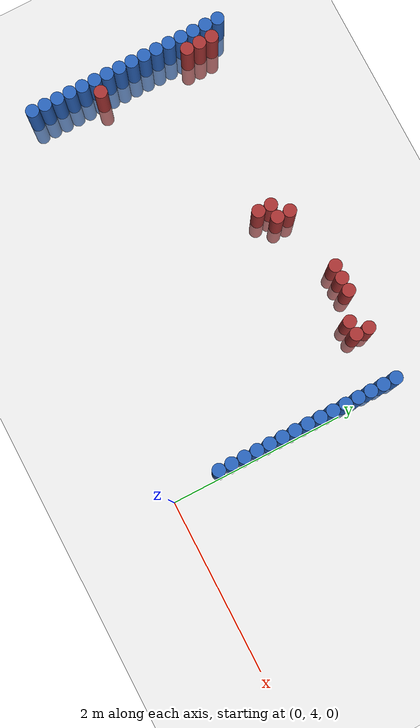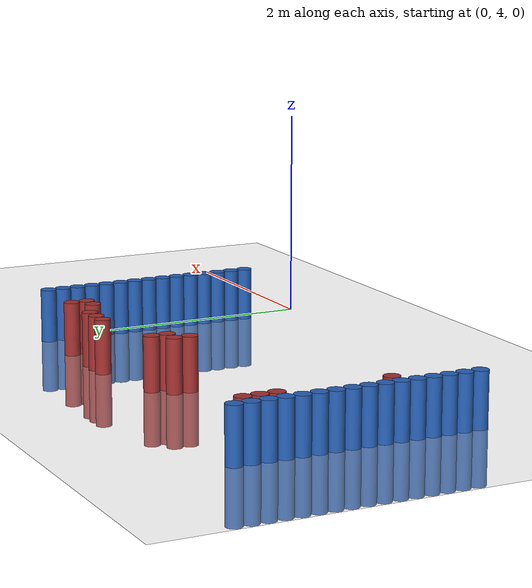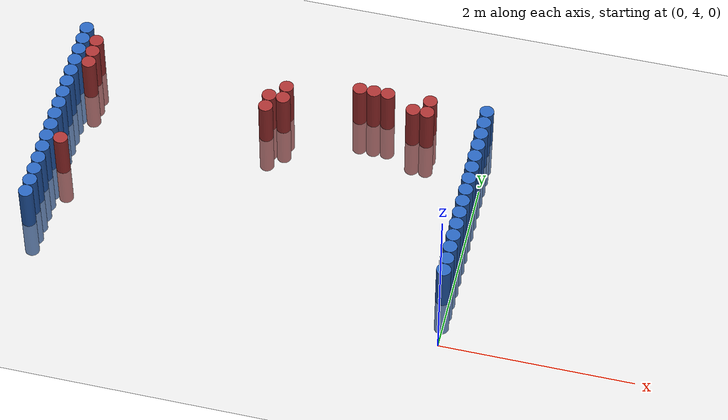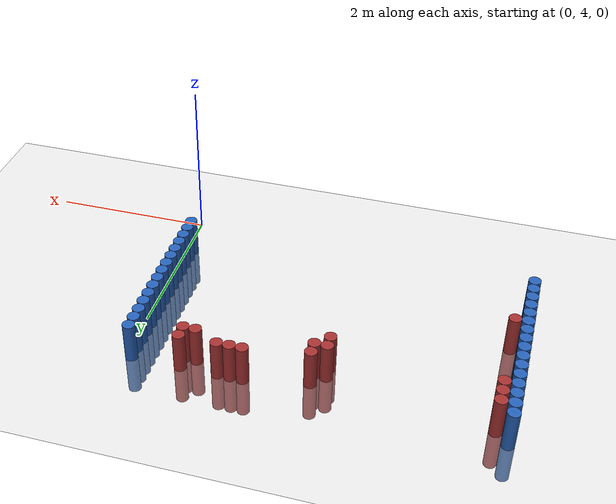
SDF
<sdf version="1.6">
 <world name="default">
  <model name="ground_plane">
   <static>1</static>
   <link name="link">
    <collision name="collision">
     <geometry><plane><normal>0 0 1</normal><size>100 100</size></plane></geometry>
     <surface><friction><ode><mu>100</mu><mu2>50</mu2></ode></friction></surface>
    </collision>
    <visual name="visual">
     <cast_shadows>0</cast_shadows>
     <geometry><plane><normal>0 0 1</normal><size>100 100</size></plane></geometry>
     <material>
      <script><uri>file://media/materials/scripts/gazebo.material</uri><name>Gazebo/Grey</name></script>
     </material>
    </visual>
   </link>
  </model>
  <model name="unit_cylinder_88">
   <static>1</static>
   <pose>-0.075000 4.575000 0.000000 0.000000 0.000000 0.000000</pose>
   <link name="link">
    <inertial>
     <mass>1</mass>
     <inertia><ixx>0.145833</ixx><ixy>0</ixy><ixz>0</ixz><iyy>0.145833</iyy><iyz>0</iyz><izz>0.125</izz></inertia>
    </inertial>
    <collision name="collision">
     <geometry><cylinder><radius>0.075000</radius><length>1</length></cylinder></geometry>
    </collision>
    <visual name="visual">
     <geometry><cylinder><radius>0.075000</radius><length>1</length></cylinder></geometry>
     <material>
      <ambient>0.152000 0.379000 0.720000 1</ambient>
      <diffuse>0.152000 0.379000 0.720000 1</diffuse>
     </material>
     <material>
      <script><name>Gazebo/Grey</name><uri>file://media/materials/scripts/gazebo.material</uri></script>
     </material>
    </visual>
   </link>
  </model>
  <model name="unit_cylinder_89">
   <static>1</static>
   <pose>-4.425000 4.575000 0.000000 0.000000 0.000000 0.000000</pose>
   <link name="link">
    <inertial>
     <mass>1</mass>
     <inertia><ixx>0.145833</ixx><ixy>0</ixy><ixz>0</ixz><iyy>0.145833</iyy><iyz>0</iyz><izz>0.125</izz></inertia>
    </inertial>
    <collision name="collision">
     <geometry><cylinder><radius>0.075000</radius><length>1</length></cylinder></geometry>
    </collision>
    <visual name="visual">
     <geometry><cylinder><radius>0.075000</radius><length>1</length></cylinder></geometry>
     <material>
      <ambient>0.152000 0.379000 0.720000 1</ambient>
      <diffuse>0.152000 0.379000 0.720000 1</diffuse>
     </material>
     <material>
      <script><name>Gazebo/Grey</name><uri>file://media/materials/scripts/gazebo.material</uri></script>
     </material>
    </visual>
   </link>
  </model>
  <model name="unit_cylinder_90">
   <static>1</static>
   <pose>-0.075000 4.725000 0.000000 0.000000 0.000000 0.000000</pose>
   <link name="link">
    <inertial>
     <mass>1</mass>
     <inertia><ixx>0.145833</ixx><ixy>0</ixy><ixz>0</ixz><iyy>0.145833</iyy><iyz>0</iyz><izz>0.125</izz></inertia>
    </inertial>
    <collision name="collision">
     <geometry><cylinder><radius>0.075000</radius><length>1</length></cylinder></geometry>
    </collision>
    <visual name="visual">
     <geometry><cylinder><radius>0.075000</radius><length>1</length></cylinder></geometry>
     <material>
      <ambient>0.152000 0.379000 0.720000 1</ambient>
      <diffuse>0.152000 0.379000 0.720000 1</diffuse>
     </material>
     <material>
      <script><name>Gazebo/Grey</name><uri>file://media/materials/scripts/gazebo.material</uri></script>
     </material>
    </visual>
   </link>
  </model>
  <model name="unit_cylinder_91">
   <static>1</static>
   <pose>-4.425000 4.725000 0.000000 0.000000 0.000000 0.000000</pose>
   <link name="link">
    <inertial>
     <mass>1</mass>
     <inertia><ixx>0.145833</ixx><ixy>0</ixy><ixz>0</ixz><iyy>0.145833</iyy><iyz>0</iyz><izz>0.125</izz></inertia>
    </inertial>
    <collision name="collision">
     <geometry><cylinder><radius>0.075000</radius><length>1</length></cylinder></geometry>
    </collision>
    <visual name="visual">
     <geometry><cylinder><radius>0.075000</radius><length>1</length></cylinder></geometry>
     <material>
      <ambient>0.152000 0.379000 0.720000 1</ambient>
      <diffuse>0.152000 0.379000 0.720000 1</diffuse>
     </material>
     <material>
      <script><name>Gazebo/Grey</name><uri>file://media/materials/scripts/gazebo.material</uri></script>
     </material>
    </visual>
   </link>
  </model>
  <model name="unit_cylinder_92">
   <static>1</static>
   <pose>-0.075000 4.875000 0.000000 0.000000 0.000000 0.000000</pose>
   <link name="link">
    <inertial>
     <mass>1</mass>
     <inertia><ixx>0.145833</ixx><ixy>0</ixy><ixz>0</ixz><iyy>0.145833</iyy><iyz>0</iyz><izz>0.125</izz></inertia>
    </inertial>
    <collision name="collision">
     <geometry><cylinder><radius>0.075000</radius><length>1</length></cylinder></geometry>
    </collision>
    <visual name="visual">
     <geometry><cylinder><radius>0.075000</radius><length>1</length></cylinder></geometry>
     <material>
      <ambient>0.152000 0.379000 0.720000 1</ambient>
      <diffuse>0.152000 0.379000 0.720000 1</diffuse>
     </material>
     <material>
      <script><name>Gazebo/Grey</name><uri>file://media/materials/scripts/gazebo.material</uri></script>
     </material>
    </visual>
   </link>
  </model>
  <model name="unit_cylinder_93">
   <static>1</static>
   <pose>-4.425000 4.875000 0.000000 0.000000 0.000000 0.000000</pose>
   <link name="link">
    <inertial>
     <mass>1</mass>
     <inertia><ixx>0.145833</ixx><ixy>0</ixy><ixz>0</ixz><iyy>0.145833</iyy><iyz>0</iyz><izz>0.125</izz></inertia>
    </inertial>
    <collision name="collision">
     <geometry><cylinder><radius>0.075000</radius><length>1</length></cylinder></geometry>
    </collision>
    <visual name="visual">
     <geometry><cylinder><radius>0.075000</radius><length>1</length></cylinder></geometry>
     <material>
      <ambient>0.152000 0.379000 0.720000 1</ambient>
      <diffuse>0.152000 0.379000 0.720000 1</diffuse>
     </material>
     <material>
      <script><name>Gazebo/Grey</name><uri>file://media/materials/scripts/gazebo.material</uri></script>
     </material>
    </visual>
   </link>
  </model>
  <model name="unit_cylinder_94">
   <static>1</static>
   <pose>-0.075000 5.025000 0.000000 0.000000 0.000000 0.000000</pose>
   <link name="link">
    <inertial>
     <mass>1</mass>
     <inertia><ixx>0.145833</ixx><ixy>0</ixy><ixz>0</ixz><iyy>0.145833</iyy><iyz>0</iyz><izz>0.125</izz></inertia>
    </inertial>
    <collision name="collision">
     <geometry><cylinder><radius>0.075000</radius><length>1</length></cylinder></geometry>
    </collision>
    <visual name="visual">
     <geometry><cylinder><radius>0.075000</radius><length>1</length></cylinder></geometry>
     <material>
      <ambient>0.152000 0.379000 0.720000 1</ambient>
      <diffuse>0.152000 0.379000 0.720000 1</diffuse>
     </material>
     <material>
      <script><name>Gazebo/Grey</name><uri>file://media/materials/scripts/gazebo.material</uri></script>
     </material>
    </visual>
   </link>
  </model>
  <model name="unit_cylinder_95">
   <static>1</static>
   <pose>-4.425000 5.025000 0.000000 0.000000 0.000000 0.000000</pose>
   <link name="link">
    <inertial>
     <mass>1</mass>
     <inertia><ixx>0.145833</ixx><ixy>0</ixy><ixz>0</ixz><iyy>0.145833</iyy><iyz>0</iyz><izz>0.125</izz></inertia>
    </inertial>
    <collision name="collision">
     <geometry><cylinder><radius>0.075000</radius><length>1</length></cylinder></geometry>
    </collision>
    <visual name="visual">
     <geometry><cylinder><radius>0.075000</radius><length>1</length></cylinder></geometry>
     <material>
      <ambient>0.152000 0.379000 0.720000 1</ambient>
      <diffuse>0.152000 0.379000 0.720000 1</diffuse>
     </material>
     <material>
      <script><name>Gazebo/Grey</name><uri>file://media/materials/scripts/gazebo.material</uri></script>
     </material>
    </visual>
   </link>
  </model>
  <model name="unit_cylinder_96">
   <static>1</static>
   <pose>-4.425000 5.175000 0.000000 0.000000 0.000000 0.000000</pose>
   <link name="link">
    <inertial>
     <mass>1</mass>
     <inertia><ixx>0.145833</ixx><ixy>0</ixy><ixz>0</ixz><iyy>0.145833</iyy><iyz>0</iyz><izz>0.125</izz></inertia>
    </inertial>
    <collision name="collision">
     <geometry><cylinder><radius>0.075000</radius><length>1</length></cylinder></geometry>
    </collision>
    <visual name="visual">
     <geometry><cylinder><radius>0.075000</radius><length>1</length></cylinder></geometry>
     <material>
      <ambient>0.152000 0.379000 0.720000 1</ambient>
      <diffuse>0.152000 0.379000 0.720000 1</diffuse>
     </material>
     <material>
      <script><name>Gazebo/Grey</name><uri>file://media/materials/scripts/gazebo.material</uri></script>
     </material>
    </visual>
   </link>
  </model>
  <model name="unit_cylinder_97">
   <static>1</static>
   <pose>-4.425000 5.325000 0.000000 0.000000 0.000000 0.000000</pose>
   <link name="link">
    <inertial>
     <mass>1</mass>
     <inertia><ixx>0.145833</ixx><ixy>0</ixy><ixz>0</ixz><iyy>0.145833</iyy><iyz>0</iyz><izz>0.125</izz></inertia>
    </inertial>
    <collision name="collision">
     <geometry><cylinder><radius>0.075000</radius><length>1</length></cylinder></geometry>
    </collision>
    <visual name="visual">
     <geometry><cylinder><radius>0.075000</radius><length>1</length></cylinder></geometry>
     <material>
      <ambient>0.152000 0.379000 0.720000 1</ambient>
      <diffuse>0.152000 0.379000 0.720000 1</diffuse>
     </material>
     <material>
      <script><name>Gazebo/Grey</name><uri>file://media/materials/scripts/gazebo.material</uri></script>
     </material>
    </visual>
   </link>
  </model>
  <model name="unit_cylinder_98">
   <static>1</static>
   <pose>-4.425000 5.475000 0.000000 0.000000 0.000000 0.000000</pose>
   <link name="link">
    <inertial>
     <mass>1</mass>
     <inertia><ixx>0.145833</ixx><ixy>0</ixy><ixz>0</ixz><iyy>0.145833</iyy><iyz>0</iyz><izz>0.125</izz></inertia>
    </inertial>
    <collision name="collision">
     <geometry><cylinder><radius>0.075000</radius><length>1</length></cylinder></geometry>
    </collision>
    <visual name="visual">
     <geometry><cylinder><radius>0.075000</radius><length>1</length></cylinder></geometry>
     <material>
      <ambient>0.152000 0.379000 0.720000 1</ambient>
      <diffuse>0.152000 0.379000 0.720000 1</diffuse>
     </material>
     <material>
      <script><name>Gazebo/Grey</name><uri>file://media/materials/scripts/gazebo.material</uri></script>
     </material>
    </visual>
   </link>
  </model>
  <model name="unit_cylinder_99">
   <static>1</static>
   <pose>-4.425000 5.625000 0.000000 0.000000 0.000000 0.000000</pose>
   <link name="link">
    <inertial>
     <mass>1</mass>
     <inertia><ixx>0.145833</ixx><ixy>0</ixy><ixz>0</ixz><iyy>0.145833</iyy><iyz>0</iyz><izz>0.125</izz></inertia>
    </inertial>
    <collision name="collision">
     <geometry><cylinder><radius>0.075000</radius><length>1</length></cylinder></geometry>
    </collision>
    <visual name="visual">
     <geometry><cylinder><radius>0.075000</radius><length>1</length></cylinder></geometry>
     <material>
      <ambient>0.152000 0.379000 0.720000 1</ambient>
      <diffuse>0.152000 0.379000 0.720000 1</diffuse>
     </material>
     <material>
      <script><name>Gazebo/Grey</name><uri>file://media/materials/scripts/gazebo.material</uri></script>
     </material>
    </visual>
   </link>
  </model>
  <model name="unit_cylinder_100">
   <static>1</static>
   <pose>-4.425000 5.775000 0.000000 0.000000 0.000000 0.000000</pose>
   <link name="link">
    <inertial>
     <mass>1</mass>
     <inertia><ixx>0.145833</ixx><ixy>0</ixy><ixz>0</ixz><iyy>0.145833</iyy><iyz>0</iyz><izz>0.125</izz></inertia>
    </inertial>
    <collision name="collision">
     <geometry><cylinder><radius>0.075000</radius><length>1</length></cylinder></geometry>
    </collision>
    <visual name="visual">
     <geometry><cylinder><radius>0.075000</radius><length>1</length></cylinder></geometry>
     <material>
      <ambient>0.152000 0.379000 0.720000 1</ambient>
      <diffuse>0.152000 0.379000 0.720000 1</diffuse>
     </material>
     <material>
      <script><name>Gazebo/Grey</name><uri>file://media/materials/scripts/gazebo.material</uri></script>
     </material>
    </visual>
   </link>
  </model>
  <model name="unit_cylinder_101">
   <static>1</static>
   <pose>-4.425000 5.925000 0.000000 0.000000 0.000000 0.000000</pose>
   <link name="link">
    <inertial>
     <mass>1</mass>
     <inertia><ixx>0.145833</ixx><ixy>0</ixy><ixz>0</ixz><iyy>0.145833</iyy><iyz>0</iyz><izz>0.125</izz></inertia>
    </inertial>
    <collision name="collision">
     <geometry><cylinder><radius>0.075000</radius><length>1</length></cylinder></geometry>
    </collision>
    <visual name="visual">
     <geometry><cylinder><radius>0.075000</radius><length>1</length></cylinder></geometry>
     <material>
      <ambient>0.152000 0.379000 0.720000 1</ambient>
      <diffuse>0.152000 0.379000 0.720000 1</diffuse>
     </material>
     <material>
      <script><name>Gazebo/Grey</name><uri>file://media/materials/scripts/gazebo.material</uri></script>
     </material>
    </visual>
   </link>
  </model>
  <model name="unit_cylinder_102">
   <static>1</static>
   <pose>-4.425000 6.075000 0.000000 0.000000 0.000000 0.000000</pose>
   <link name="link">
    <inertial>
     <mass>1</mass>
     <inertia><ixx>0.145833</ixx><ixy>0</ixy><ixz>0</ixz><iyy>0.145833</iyy><iyz>0</iyz><izz>0.125</izz></inertia>
    </inertial>
    <collision name="collision">
     <geometry><cylinder><radius>0.075000</radius><length>1</length></cylinder></geometry>
    </collision>
    <visual name="visual">
     <geometry><cylinder><radius>0.075000</radius><length>1</length></cylinder></geometry>
     <material>
      <ambient>0.152000 0.379000 0.720000 1</ambient>
      <diffuse>0.152000 0.379000 0.720000 1</diffuse>
     </material>
     <material>
      <script><name>Gazebo/Grey</name><uri>file://media/materials/scripts/gazebo.material</uri></script>
     </material>
    </visual>
   </link>
  </model>
  <model name="unit_cylinder_103">
   <static>1</static>
   <pose>-4.425000 6.225000 0.000000 0.000000 0.000000 0.000000</pose>
   <link name="link">
    <inertial>
     <mass>1</mass>
     <inertia><ixx>0.145833</ixx><ixy>0</ixy><ixz>0</ixz><iyy>0.145833</iyy><iyz>0</iyz><izz>0.125</izz></inertia>
    </inertial>
    <collision name="collision">
     <geometry><cylinder><radius>0.075000</radius><length>1</length></cylinder></geometry>
    </collision>
    <visual name="visual">
     <geometry><cylinder><radius>0.075000</radius><length>1</length></cylinder></geometry>
     <material>
      <ambient>0.152000 0.379000 0.720000 1</ambient>
      <diffuse>0.152000 0.379000 0.720000 1</diffuse>
     </material>
     <material>
      <script><name>Gazebo/Grey</name><uri>file://media/materials/scripts/gazebo.material</uri></script>
     </material>
    </visual>
   </link>
  </model>
  <model name="unit_cylinder_104">
   <static>1</static>
   <pose>-4.425000 6.375000 0.000000 0.000000 0.000000 0.000000</pose>
   <link name="link">
    <inertial>
     <mass>1</mass>
     <inertia><ixx>0.145833</ixx><ixy>0</ixy><ixz>0</ixz><iyy>0.145833</iyy><iyz>0</iyz><izz>0.125</izz></inertia>
    </inertial>
    <collision name="collision">
     <geometry><cylinder><radius>0.075000</radius><length>1</length></cylinder></geometry>
    </collision>
    <visual name="visual">
     <geometry><cylinder><radius>0.075000</radius><length>1</length></cylinder></geometry>
     <material>
      <ambient>0.152000 0.379000 0.720000 1</ambient>
      <diffuse>0.152000 0.379000 0.720000 1</diffuse>
     </material>
     <material>
      <script><name>Gazebo/Grey</name><uri>file://media/materials/scripts/gazebo.material</uri></script>
     </material>
    </visual>
   </link>
  </model>
  <model name="unit_cylinder_105">
   <static>1</static>
   <pose>-4.425000 6.525000 0.000000 0.000000 0.000000 0.000000</pose>
   <link name="link">
    <inertial>
     <mass>1</mass>
     <inertia><ixx>0.145833</ixx><ixy>0</ixy><ixz>0</ixz><iyy>0.145833</iyy><iyz>0</iyz><izz>0.125</izz></inertia>
    </inertial>
    <collision name="collision">
     <geometry><cylinder><radius>0.075000</radius><length>1</length></cylinder></geometry>
    </collision>
    <visual name="visual">
     <geometry><cylinder><radius>0.075000</radius><length>1</length></cylinder></geometry>
     <material>
      <ambient>0.152000 0.379000 0.720000 1</ambient>
      <diffuse>0.152000 0.379000 0.720000 1</diffuse>
     </material>
     <material>
      <script><name>Gazebo/Grey</name><uri>file://media/materials/scripts/gazebo.material</uri></script>
     </material>
    </visual>
   </link>
  </model>
  <model name="unit_cylinder_106">
   <static>1</static>
   <pose>-4.425000 6.675000 0.000000 0.000000 0.000000 0.000000</pose>
   <link name="link">
    <inertial>
     <mass>1</mass>
     <inertia><ixx>0.145833</ixx><ixy>0</ixy><ixz>0</ixz><iyy>0.145833</iyy><iyz>0</iyz><izz>0.125</izz></inertia>
    </inertial>
    <collision name="collision">
     <geometry><cylinder><radius>0.075000</radius><length>1</length></cylinder></geometry>
    </collision>
    <visual name="visual">
     <geometry><cylinder><radius>0.075000</radius><length>1</length></cylinder></geometry>
     <material>
      <ambient>0.152000 0.379000 0.720000 1</ambient>
      <diffuse>0.152000 0.379000 0.720000 1</diffuse>
     </material>
     <material>
      <script><name>Gazebo/Grey</name><uri>file://media/materials/scripts/gazebo.material</uri></script>
     </material>
    </visual>
   </link>
  </model>
  <model name="unit_cylinder_107">
   <static>1</static>
   <pose>-4.425000 6.825000 0.000000 0.000000 0.000000 0.000000</pose>
   <link name="link">
    <inertial>
     <mass>1</mass>
     <inertia><ixx>0.145833</ixx><ixy>0</ixy><ixz>0</ixz><iyy>0.145833</iyy><iyz>0</iyz><izz>0.125</izz></inertia>
    </inertial>
    <collision name="collision">
     <geometry><cylinder><radius>0.075000</radius><length>1</length></cylinder></geometry>
    </collision>
    <visual name="visual">
     <geometry><cylinder><radius>0.075000</radius><length>1</length></cylinder></geometry>
     <material>
      <ambient>0.152000 0.379000 0.720000 1</ambient>
      <diffuse>0.152000 0.379000 0.720000 1</diffuse>
     </material>
     <material>
      <script><name>Gazebo/Grey</name><uri>file://media/materials/scripts/gazebo.material</uri></script>
     </material>
    </visual>
   </link>
  </model>
  <model name="unit_cylinder_126">
   <static>1</static>
   <pose>-4.275000 5.325000 0.000000 0.000000 0.000000 0.000000</pose>
   <link name="link">
    <inertial>
     <mass>1</mass>
     <inertia><ixx>0.145833</ixx><ixy>0</ixy><ixz>0</ixz><iyy>0.145833</iyy><iyz>0</iyz><izz>0.125</izz></inertia>
    </inertial>
    <collision name="collision">
     <geometry><cylinder><radius>0.075000</radius><length>1</length></cylinder></geometry>
    </collision>
    <visual name="visual">
     <geometry><cylinder><radius>0.075000</radius><length>1</length></cylinder></geometry>
     <material>
      <ambient>0.648000 0.192000 0.192000 1</ambient>
      <diffuse>0.648000 0.192000 0.192000 1</diffuse>
     </material>
     <material>
      <script><name>Gazebo/Grey</name><uri>file://media/materials/scripts/gazebo.material</uri></script>
     </material>
    </visual>
   </link>
  </model>
  <model name="unit_cylinder_127">
   <static>1</static>
   <pose>-4.275000 6.375000 0.000000 0.000000 0.000000 0.000000</pose>
   <link name="link">
    <inertial>
     <mass>1</mass>
     <inertia><ixx>0.145833</ixx><ixy>0</ixy><ixz>0</ixz><iyy>0.145833</iyy><iyz>0</iyz><izz>0.125</izz></inertia>
    </inertial>
    <collision name="collision">
     <geometry><cylinder><radius>0.075000</radius><length>1</length></cylinder></geometry>
    </collision>
    <visual name="visual">
     <geometry><cylinder><radius>0.075000</radius><length>1</length></cylinder></geometry>
     <material>
      <ambient>0.648000 0.192000 0.192000 1</ambient>
      <diffuse>0.648000 0.192000 0.192000 1</diffuse>
     </material>
     <material>
      <script><name>Gazebo/Grey</name><uri>file://media/materials/scripts/gazebo.material</uri></script>
     </material>
    </visual>
   </link>
  </model>
  <model name="unit_cylinder_128">
   <static>1</static>
   <pose>-4.275000 6.525000 0.000000 0.000000 0.000000 0.000000</pose>
   <link name="link">
    <inertial>
     <mass>1</mass>
     <inertia><ixx>0.145833</ixx><ixy>0</ixy><ixz>0</ixz><iyy>0.145833</iyy><iyz>0</iyz><izz>0.125</izz></inertia>
    </inertial>
    <collision name="collision">
     <geometry><cylinder><radius>0.075000</radius><length>1</length></cylinder></geometry>
    </collision>
    <visual name="visual">
     <geometry><cylinder><radius>0.075000</radius><length>1</length></cylinder></geometry>
     <material>
      <ambient>0.648000 0.192000 0.192000 1</ambient>
      <diffuse>0.648000 0.192000 0.192000 1</diffuse>
     </material>
     <material>
      <script><name>Gazebo/Grey</name><uri>file://media/materials/scripts/gazebo.material</uri></script>
     </material>
    </visual>
   </link>
  </model>
  <model name="unit_cylinder_129">
   <static>1</static>
   <pose>-4.275000 6.675000 0.000000 0.000000 0.000000 0.000000</pose>
   <link name="link">
    <inertial>
     <mass>1</mass>
     <inertia><ixx>0.145833</ixx><ixy>0</ixy><ixz>0</ixz><iyy>0.145833</iyy><iyz>0</iyz><izz>0.125</izz></inertia>
    </inertial>
    <collision name="collision">
     <geometry><cylinder><radius>0.075000</radius><length>1</length></cylinder></geometry>
    </collision>
    <visual name="visual">
     <geometry><cylinder><radius>0.075000</radius><length>1</length></cylinder></geometry>
     <material>
      <ambient>0.648000 0.192000 0.192000 1</ambient>
      <diffuse>0.648000 0.192000 0.192000 1</diffuse>
     </material>
     <material>
      <script><name>Gazebo/Grey</name><uri>file://media/materials/scripts/gazebo.material</uri></script>
     </material>
    </visual>
   </link>
  </model>
  <model name="unit_cylinder_152">
   <static>1</static>
   <pose>-2.325000 6.225000 0.000000 0.000000 0.000000 0.000000</pose>
   <link name="link">
    <inertial>
     <mass>1</mass>
     <inertia><ixx>0.145833</ixx><ixy>0</ixy><ixz>0</ixz><iyy>0.145833</iyy><iyz>0</iyz><izz>0.125</izz></inertia>
    </inertial>
    <collision name="collision">
     <geometry><cylinder><radius>0.075000</radius><length>1</length></cylinder></geometry>
    </collision>
    <visual name="visual">
     <geometry><cylinder><radius>0.075000</radius><length>1</length></cylinder></geometry>
     <material>
      <ambient>0.648000 0.192000 0.192000 1</ambient>
      <diffuse>0.648000 0.192000 0.192000 1</diffuse>
     </material>
     <material>
      <script><name>Gazebo/Grey</name><uri>file://media/materials/scripts/gazebo.material</uri></script>
     </material>
    </visual>
   </link>
  </model>
  <model name="unit_cylinder_153">
   <static>1</static>
   <pose>-2.325000 6.375000 0.000000 0.000000 0.000000 0.000000</pose>
   <link name="link">
    <inertial>
     <mass>1</mass>
     <inertia><ixx>0.145833</ixx><ixy>0</ixy><ixz>0</ixz><iyy>0.145833</iyy><iyz>0</iyz><izz>0.125</izz></inertia>
    </inertial>
    <collision name="collision">
     <geometry><cylinder><radius>0.075000</radius><length>1</length></cylinder></geometry>
    </collision>
    <visual name="visual">
     <geometry><cylinder><radius>0.075000</radius><length>1</length></cylinder></geometry>
     <material>
      <ambient>0.648000 0.192000 0.192000 1</ambient>
      <diffuse>0.648000 0.192000 0.192000 1</diffuse>
     </material>
     <material>
      <script><name>Gazebo/Grey</name><uri>file://media/materials/scripts/gazebo.material</uri></script>
     </material>
    </visual>
   </link>
  </model>
  <model name="unit_cylinder_158">
   <static>1</static>
   <pose>-2.175000 6.375000 0.000000 0.000000 0.000000 0.000000</pose>
   <link name="link">
    <inertial>
     <mass>1</mass>
     <inertia><ixx>0.145833</ixx><ixy>0</ixy><ixz>0</ixz><iyy>0.145833</iyy><iyz>0</iyz><izz>0.125</izz></inertia>
    </inertial>
    <collision name="collision">
     <geometry><cylinder><radius>0.075000</radius><length>1</length></cylinder></geometry>
    </collision>
    <visual name="visual">
     <geometry><cylinder><radius>0.075000</radius><length>1</length></cylinder></geometry>
     <material>
      <ambient>0.648000 0.192000 0.192000 1</ambient>
      <diffuse>0.648000 0.192000 0.192000 1</diffuse>
     </material>
     <material>
      <script><name>Gazebo/Grey</name><uri>file://media/materials/scripts/gazebo.material</uri></script>
     </material>
    </visual>
   </link>
  </model>
  <model name="unit_cylinder_159">
   <static>1</static>
   <pose>-2.175000 6.525000 0.000000 0.000000 0.000000 0.000000</pose>
   <link name="link">
    <inertial>
     <mass>1</mass>
     <inertia><ixx>0.145833</ixx><ixy>0</ixy><ixz>0</ixz><iyy>0.145833</iyy><iyz>0</iyz><izz>0.125</izz></inertia>
    </inertial>
    <collision name="collision">
     <geometry><cylinder><radius>0.075000</radius><length>1</length></cylinder></geometry>
    </collision>
    <visual name="visual">
     <geometry><cylinder><radius>0.075000</radius><length>1</length></cylinder></geometry>
     <material>
      <ambient>0.648000 0.192000 0.192000 1</ambient>
      <diffuse>0.648000 0.192000 0.192000 1</diffuse>
     </material>
     <material>
      <script><name>Gazebo/Grey</name><uri>file://media/materials/scripts/gazebo.material</uri></script>
     </material>
    </visual>
   </link>
  </model>
  <model name="unit_cylinder_169">
   <static>1</static>
   <pose>-1.425000 6.675000 0.000000 0.000000 0.000000 0.000000</pose>
   <link name="link">
    <inertial>
     <mass>1</mass>
     <inertia><ixx>0.145833</ixx><ixy>0</ixy><ixz>0</ixz><iyy>0.145833</iyy><iyz>0</iyz><izz>0.125</izz></inertia>
    </inertial>
    <collision name="collision">
     <geometry><cylinder><radius>0.075000</radius><length>1</length></cylinder></geometry>
    </collision>
    <visual name="visual">
     <geometry><cylinder><radius>0.075000</radius><length>1</length></cylinder></geometry>
     <material>
      <ambient>0.648000 0.192000 0.192000 1</ambient>
      <diffuse>0.648000 0.192000 0.192000 1</diffuse>
     </material>
     <material>
      <script><name>Gazebo/Grey</name><uri>file://media/materials/scripts/gazebo.material</uri></script>
     </material>
    </visual>
   </link>
  </model>
  <model name="unit_cylinder_173">
   <static>1</static>
   <pose>-1.275000 6.675000 0.000000 0.000000 0.000000 0.000000</pose>
   <link name="link">
    <inertial>
     <mass>1</mass>
     <inertia><ixx>0.145833</ixx><ixy>0</ixy><ixz>0</ixz><iyy>0.145833</iyy><iyz>0</iyz><izz>0.125</izz></inertia>
    </inertial>
    <collision name="collision">
     <geometry><cylinder><radius>0.075000</radius><length>1</length></cylinder></geometry>
    </collision>
    <visual name="visual">
     <geometry><cylinder><radius>0.075000</radius><length>1</length></cylinder></geometry>
     <material>
      <ambient>0.648000 0.192000 0.192000 1</ambient>
      <diffuse>0.648000 0.192000 0.192000 1</diffuse>
     </material>
     <material>
      <script><name>Gazebo/Grey</name><uri>file://media/materials/scripts/gazebo.material</uri></script>
     </material>
    </visual>
   </link>
  </model>
  <model name="unit_cylinder_177">
   <static>1</static>
   <pose>-1.125000 6.675000 0.000000 0.000000 0.000000 0.000000</pose>
   <link name="link">
    <inertial>
     <mass>1</mass>
     <inertia><ixx>0.145833</ixx><ixy>0</ixy><ixz>0</ixz><iyy>0.145833</iyy><iyz>0</iyz><izz>0.125</izz></inertia>
    </inertial>
    <collision name="collision">
     <geometry><cylinder><radius>0.075000</radius><length>1</length></cylinder></geometry>
    </collision>
    <visual name="visual">
     <geometry><cylinder><radius>0.075000</radius><length>1</length></cylinder></geometry>
     <material>
      <ambient>0.648000 0.192000 0.192000 1</ambient>
      <diffuse>0.648000 0.192000 0.192000 1</diffuse>
     </material>
     <material>
      <script><name>Gazebo/Grey</name><uri>file://media/materials/scripts/gazebo.material</uri></script>
     </material>
    </visual>
   </link>
  </model>
  <model name="unit_cylinder_181">
   <static>1</static>
   <pose>-0.825000 6.525000 0.000000 0.000000 0.000000 0.000000</pose>
   <link name="link">
    <inertial>
     <mass>1</mass>
     <inertia><ixx>0.145833</ixx><ixy>0</ixy><ixz>0</ixz><iyy>0.145833</iyy><iyz>0</iyz><izz>0.125</izz></inertia>
    </inertial>
    <collision name="collision">
     <geometry><cylinder><radius>0.075000</radius><length>1</length></cylinder></geometry>
    </collision>
    <visual name="visual">
     <geometry><cylinder><radius>0.075000</radius><length>1</length></cylinder></geometry>
     <material>
      <ambient>0.648000 0.192000 0.192000 1</ambient>
      <diffuse>0.648000 0.192000 0.192000 1</diffuse>
     </material>
     <material>
      <script><name>Gazebo/Grey</name><uri>file://media/materials/scripts/gazebo.material</uri></script>
     </material>
    </visual>
   </link>
  </model>
  <model name="unit_cylinder_184">
   <static>1</static>
   <pose>-0.675000 6.525000 0.000000 0.000000 0.000000 0.000000</pose>
   <link name="link">
    <inertial>
     <mass>1</mass>
     <inertia><ixx>0.145833</ixx><ixy>0</ixy><ixz>0</ixz><iyy>0.145833</iyy><iyz>0</iyz><izz>0.125</izz></inertia>
    </inertial>
    <collision name="collision">
     <geometry><cylinder><radius>0.075000</radius><length>1</length></cylinder></geometry>
    </collision>
    <visual name="visual">
     <geometry><cylinder><radius>0.075000</radius><length>1</length></cylinder></geometry>
     <material>
      <ambient>0.648000 0.192000 0.192000 1</ambient>
      <diffuse>0.648000 0.192000 0.192000 1</diffuse>
     </material>
     <material>
      <script><name>Gazebo/Grey</name><uri>file://media/materials/scripts/gazebo.material</uri></script>
     </material>
    </visual>
   </link>
  </model>
  <model name="unit_cylinder_185">
   <static>1</static>
   <pose>-0.675000 6.675000 0.000000 0.000000 0.000000 0.000000</pose>
   <link name="link">
    <inertial>
     <mass>1</mass>
     <inertia><ixx>0.145833</ixx><ixy>0</ixy><ixz>0</ixz><iyy>0.145833</iyy><iyz>0</iyz><izz>0.125</izz></inertia>
    </inertial>
    <collision name="collision">
     <geometry><cylinder><radius>0.075000</radius><length>1</length></cylinder></geometry>
    </collision>
    <visual name="visual">
     <geometry><cylinder><radius>0.075000</radius><length>1</length></cylinder></geometry>
     <material>
      <ambient>0.648000 0.192000 0.192000 1</ambient>
      <diffuse>0.648000 0.192000 0.192000 1</diffuse>
     </material>
     <material>
      <script><name>Gazebo/Grey</name><uri>file://media/materials/scripts/gazebo.material</uri></script>
     </material>
    </visual>
   </link>
  </model>
  <model name="unit_cylinder_192">
   <static>1</static>
   <pose>-0.075000 5.175000 0.000000 0.000000 0.000000 0.000000</pose>
   <link name="link">
    <inertial>
     <mass>1</mass>
     <inertia><ixx>0.145833</ixx><ixy>0</ixy><ixz>0</ixz><iyy>0.145833</iyy><iyz>0</iyz><izz>0.125</izz></inertia>
    </inertial>
    <collision name="collision">
     <geometry><cylinder><radius>0.075000</radius><length>1</length></cylinder></geometry>
    </collision>
    <visual name="visual">
     <geometry><cylinder><radius>0.075000</radius><length>1</length></cylinder></geometry>
     <material>
      <ambient>0.152000 0.379000 0.720000 1</ambient>
      <diffuse>0.152000 0.379000 0.720000 1</diffuse>
     </material>
     <material>
      <script><name>Gazebo/Grey</name><uri>file://media/materials/scripts/gazebo.material</uri></script>
     </material>
    </visual>
   </link>
  </model>
  <model name="unit_cylinder_193">
   <static>1</static>
   <pose>-0.075000 5.325000 0.000000 0.000000 0.000000 0.000000</pose>
   <link name="link">
    <inertial>
     <mass>1</mass>
     <inertia><ixx>0.145833</ixx><ixy>0</ixy><ixz>0</ixz><iyy>0.145833</iyy><iyz>0</iyz><izz>0.125</izz></inertia>
    </inertial>
    <collision name="collision">
     <geometry><cylinder><radius>0.075000</radius><length>1</length></cylinder></geometry>
    </collision>
    <visual name="visual">
     <geometry><cylinder><radius>0.075000</radius><length>1</length></cylinder></geometry>
     <material>
      <ambient>0.152000 0.379000 0.720000 1</ambient>
      <diffuse>0.152000 0.379000 0.720000 1</diffuse>
     </material>
     <material>
      <script><name>Gazebo/Grey</name><uri>file://media/materials/scripts/gazebo.material</uri></script>
     </material>
    </visual>
   </link>
  </model>
  <model name="unit_cylinder_194">
   <static>1</static>
   <pose>-0.075000 5.475000 0.000000 0.000000 0.000000 0.000000</pose>
   <link name="link">
    <inertial>
     <mass>1</mass>
     <inertia><ixx>0.145833</ixx><ixy>0</ixy><ixz>0</ixz><iyy>0.145833</iyy><iyz>0</iyz><izz>0.125</izz></inertia>
    </inertial>
    <collision name="collision">
     <geometry><cylinder><radius>0.075000</radius><length>1</length></cylinder></geometry>
    </collision>
    <visual name="visual">
     <geometry><cylinder><radius>0.075000</radius><length>1</length></cylinder></geometry>
     <material>
      <ambient>0.152000 0.379000 0.720000 1</ambient>
      <diffuse>0.152000 0.379000 0.720000 1</diffuse>
     </material>
     <material>
      <script><name>Gazebo/Grey</name><uri>file://media/materials/scripts/gazebo.material</uri></script>
     </material>
    </visual>
   </link>
  </model>
  <model name="unit_cylinder_195">
   <static>1</static>
   <pose>-0.075000 5.625000 0.000000 0.000000 0.000000 0.000000</pose>
   <link name="link">
    <inertial>
     <mass>1</mass>
     <inertia><ixx>0.145833</ixx><ixy>0</ixy><ixz>0</ixz><iyy>0.145833</iyy><iyz>0</iyz><izz>0.125</izz></inertia>
    </inertial>
    <collision name="collision">
     <geometry><cylinder><radius>0.075000</radius><length>1</length></cylinder></geometry>
    </collision>
    <visual name="visual">
     <geometry><cylinder><radius>0.075000</radius><length>1</length></cylinder></geometry>
     <material>
      <ambient>0.152000 0.379000 0.720000 1</ambient>
      <diffuse>0.152000 0.379000 0.720000 1</diffuse>
     </material>
     <material>
      <script><name>Gazebo/Grey</name><uri>file://media/materials/scripts/gazebo.material</uri></script>
     </material>
    </visual>
   </link>
  </model>
  <model name="unit_cylinder_196">
   <static>1</static>
   <pose>-0.075000 5.775000 0.000000 0.000000 0.000000 0.000000</pose>
   <link name="link">
    <inertial>
     <mass>1</mass>
     <inertia><ixx>0.145833</ixx><ixy>0</ixy><ixz>0</ixz><iyy>0.145833</iyy><iyz>0</iyz><izz>0.125</izz></inertia>
    </inertial>
    <collision name="collision">
     <geometry><cylinder><radius>0.075000</radius><length>1</length></cylinder></geometry>
    </collision>
    <visual name="visual">
     <geometry><cylinder><radius>0.075000</radius><length>1</length></cylinder></geometry>
     <material>
      <ambient>0.152000 0.379000 0.720000 1</ambient>
      <diffuse>0.152000 0.379000 0.720000 1</diffuse>
     </material>
     <material>
      <script><name>Gazebo/Grey</name><uri>file://media/materials/scripts/gazebo.material</uri></script>
     </material>
    </visual>
   </link>
  </model>
  <model name="unit_cylinder_197">
   <static>1</static>
   <pose>-0.075000 5.925000 0.000000 0.000000 0.000000 0.000000</pose>
   <link name="link">
    <inertial>
     <mass>1</mass>
     <inertia><ixx>0.145833</ixx><ixy>0</ixy><ixz>0</ixz><iyy>0.145833</iyy><iyz>0</iyz><izz>0.125</izz></inertia>
    </inertial>
    <collision name="collision">
     <geometry><cylinder><radius>0.075000</radius><length>1</length></cylinder></geometry>
    </collision>
    <visual name="visual">
     <geometry><cylinder><radius>0.075000</radius><length>1</length></cylinder></geometry>
     <material>
      <ambient>0.152000 0.379000 0.720000 1</ambient>
      <diffuse>0.152000 0.379000 0.720000 1</diffuse>
     </material>
     <material>
      <script><name>Gazebo/Grey</name><uri>file://media/materials/scripts/gazebo.material</uri></script>
     </material>
    </visual>
   </link>
  </model>
  <model name="unit_cylinder_198">
   <static>1</static>
   <pose>-0.075000 6.075000 0.000000 0.000000 0.000000 0.000000</pose>
   <link name="link">
    <inertial>
     <mass>1</mass>
     <inertia><ixx>0.145833</ixx><ixy>0</ixy><ixz>0</ixz><iyy>0.145833</iyy><iyz>0</iyz><izz>0.125</izz></inertia>
    </inertial>
    <collision name="collision">
     <geometry><cylinder><radius>0.075000</radius><length>1</length></cylinder></geometry>
    </collision>
    <visual name="visual">
     <geometry><cylinder><radius>0.075000</radius><length>1</length></cylinder></geometry>
     <material>
      <ambient>0.152000 0.379000 0.720000 1</ambient>
      <diffuse>0.152000 0.379000 0.720000 1</diffuse>
     </material>
     <material>
      <script><name>Gazebo/Grey</name><uri>file://media/materials/scripts/gazebo.material</uri></script>
     </material>
    </visual>
   </link>
  </model>
  <model name="unit_cylinder_199">
   <static>1</static>
   <pose>-0.075000 6.225000 0.000000 0.000000 0.000000 0.000000</pose>
   <link name="link">
    <inertial>
     <mass>1</mass>
     <inertia><ixx>0.145833</ixx><ixy>0</ixy><ixz>0</ixz><iyy>0.145833</iyy><iyz>0</iyz><izz>0.125</izz></inertia>
    </inertial>
    <collision name="collision">
     <geometry><cylinder><radius>0.075000</radius><length>1</length></cylinder></geometry>
    </collision>
    <visual name="visual">
     <geometry><cylinder><radius>0.075000</radius><length>1</length></cylinder></geometry>
     <material>
      <ambient>0.152000 0.379000 0.720000 1</ambient>
      <diffuse>0.152000 0.379000 0.720000 1</diffuse>
     </material>
     <material>
      <script><name>Gazebo/Grey</name><uri>file://media/materials/scripts/gazebo.material</uri></script>
     </material>
    </visual>
   </link>
  </model>
  <model name="unit_cylinder_200">
   <static>1</static>
   <pose>-0.075000 6.375000 0.000000 0.000000 0.000000 0.000000</pose>
   <link name="link">
    <inertial>
     <mass>1</mass>
     <inertia><ixx>0.145833</ixx><ixy>0</ixy><ixz>0</ixz><iyy>0.145833</iyy><iyz>0</iyz><izz>0.125</izz></inertia>
    </inertial>
    <collision name="collision">
     <geometry><cylinder><radius>0.075000</radius><length>1</length></cylinder></geometry>
    </collision>
    <visual name="visual">
     <geometry><cylinder><radius>0.075000</radius><length>1</length></cylinder></geometry>
     <material>
      <ambient>0.152000 0.379000 0.720000 1</ambient>
      <diffuse>0.152000 0.379000 0.720000 1</diffuse>
     </material>
     <material>
      <script><name>Gazebo/Grey</name><uri>file://media/materials/scripts/gazebo.material</uri></script>
     </material>
    </visual>
   </link>
  </model>
  <model name="unit_cylinder_201">
   <static>1</static>
   <pose>-0.075000 6.525000 0.000000 0.000000 0.000000 0.000000</pose>
   <link name="link">
    <inertial>
     <mass>1</mass>
     <inertia><ixx>0.145833</ixx><ixy>0</ixy><ixz>0</ixz><iyy>0.145833</iyy><iyz>0</iyz><izz>0.125</izz></inertia>
    </inertial>
    <collision name="collision">
     <geometry><cylinder><radius>0.075000</radius><length>1</length></cylinder></geometry>
    </collision>
    <visual name="visual">
     <geometry><cylinder><radius>0.075000</radius><length>1</length></cylinder></geometry>
     <material>
      <ambient>0.152000 0.379000 0.720000 1</ambient>
      <diffuse>0.152000 0.379000 0.720000 1</diffuse>
     </material>
     <material>
      <script><name>Gazebo/Grey</name><uri>file://media/materials/scripts/gazebo.material</uri></script>
     </material>
    </visual>
   </link>
  </model>
  <model name="unit_cylinder_202">
   <static>1</static>
   <pose>-0.075000 6.675000 0.000000 0.000000 0.000000 0.000000</pose>
   <link name="link">
    <inertial>
     <mass>1</mass>
     <inertia><ixx>0.145833</ixx><ixy>0</ixy><ixz>0</ixz><iyy>0.145833</iyy><iyz>0</iyz><izz>0.125</izz></inertia>
    </inertial>
    <collision name="collision">
     <geometry><cylinder><radius>0.075000</radius><length>1</length></cylinder></geometry>
    </collision>
    <visual name="visual">
     <geometry><cylinder><radius>0.075000</radius><length>1</length></cylinder></geometry>
     <material>
      <ambient>0.152000 0.379000 0.720000 1</ambient>
      <diffuse>0.152000 0.379000 0.720000 1</diffuse>
     </material>
     <material>
      <script><name>Gazebo/Grey</name><uri>file://media/materials/scripts/gazebo.material</uri></script>
     </material>
    </visual>
   </link>
  </model>
 </world>
</sdf>
